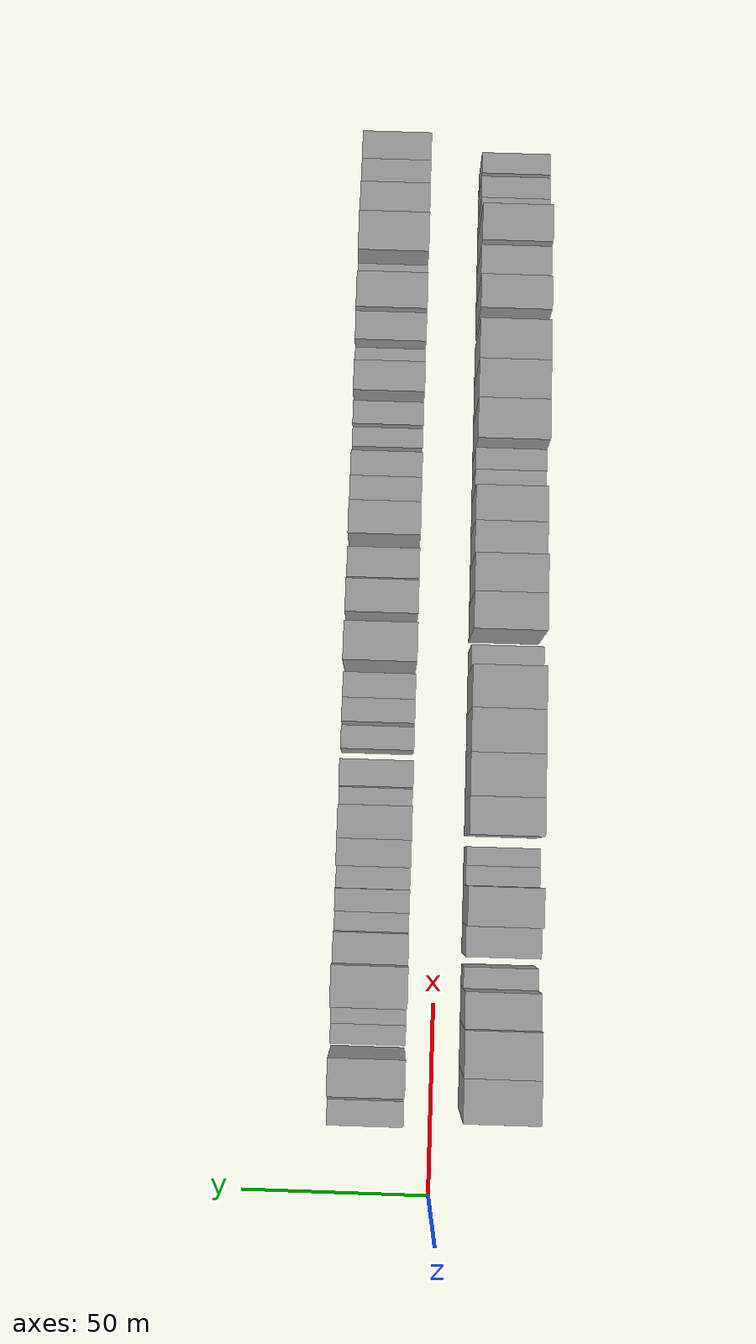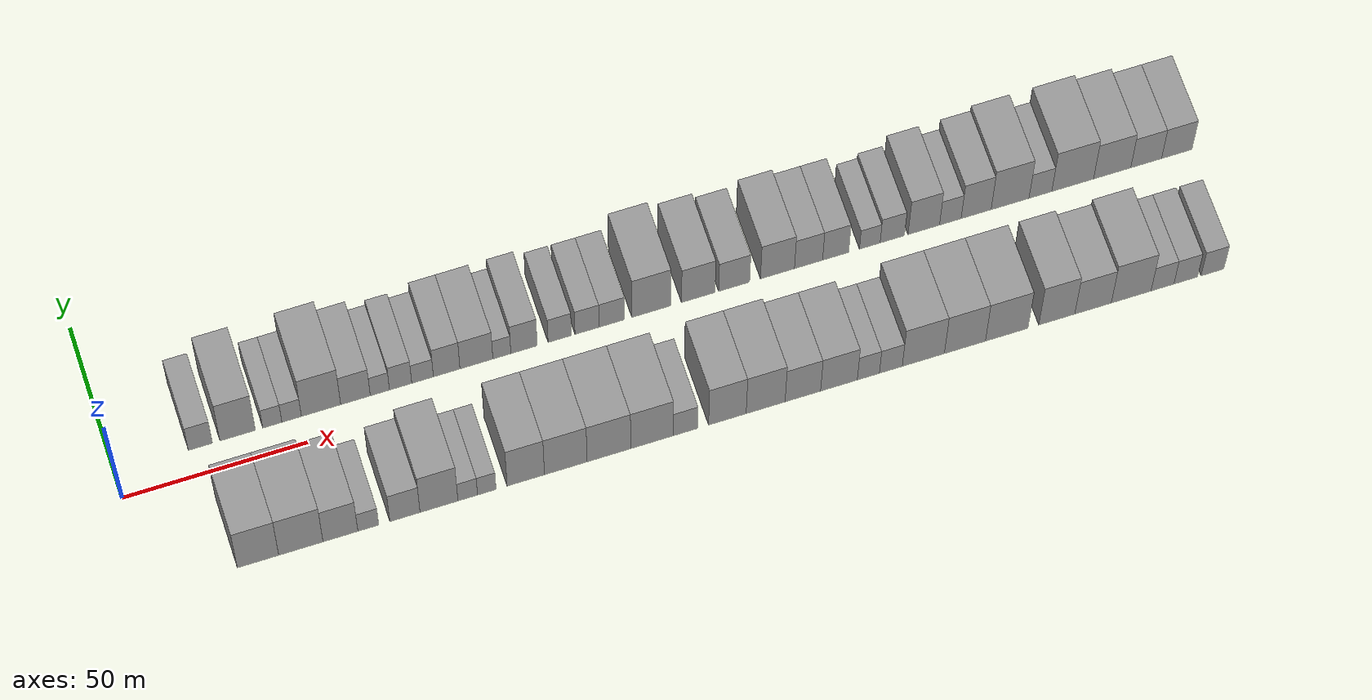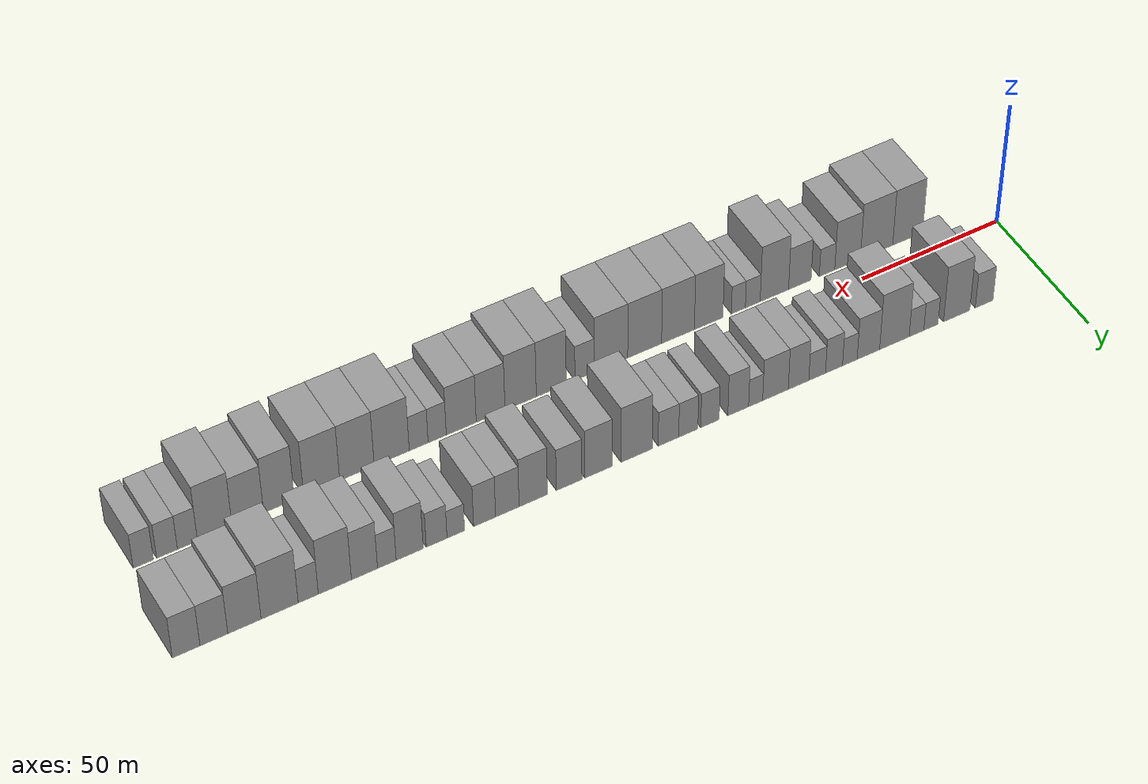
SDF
<sdf version="1.6">
 <world name="default">
  <scene>
   <sky><clouds><speed>12</speed></clouds></sky>
   <ambient>0.4 0.4 0.4 1</ambient>
   <background>0.7 0.7 0.7 1</background>
   <shadows>1</shadows>
  </scene>
  <gravity>0 0 -9.8066</gravity>
  <magnetic_field>6e-06 2.3e-05 -4.2e-05</magnetic_field>
  <physics default="0" name="default_physics" type="ode">
   <ode>
    <solver>
     <type>quick</type>
     <iters>10</iters>
     <sor>1.0</sor>
     <use_dynamic_moi_rescaling>0</use_dynamic_moi_rescaling>
    </solver>
    <constraints>
     <cfm>0</cfm>
     <erp>0.2</erp>
     <contact_max_correcting_vel>100</contact_max_correcting_vel>
     <contact_surface_layer>0.001</contact_surface_layer>
    </constraints>
   </ode>
   <max_step_size>0.004</max_step_size>
   <real_time_factor>1</real_time_factor>
   <real_time_update_rate>250</real_time_update_rate>
  </physics>
  <light name="sun" type="directional">
   <pose>0 0 10 0 0 0</pose>
   <diffuse>0.8 0.8 0.8 1</diffuse>
   <specular>0.2 0.2 0.2 1</specular>
   <attenuation>
    <range>1000</range>
    <constant>0.9</constant>
    <linear>0.01</linear>
    <quadratic>0.001</quadratic>
   </attenuation>
   <direction>-0.5 0.1 -0.9</direction>
  </light>
  <model name="building_1">
   <static>1</static>
   <pose>23.2598 17.5000 0 0.000000 0.000000 1.570796</pose>
   <link name="link">
    <pose>0 0 7.50 0 0 0</pose>
    <collision name="collision"><geometry><box><size>20.0000 6.5196 15.0000</size></box></geometry></collision>
    <visual name="visual">
     <cast_shadows>0</cast_shadows>
     <geometry><box><size>20.0000 6.5196 15.0000</size></box></geometry>
     <material>
      <script>
       <uri>model://grey_wall/materials/scripts</uri>
       <uri>model://grey_wall/materials/textures</uri>
       <name>vrc/grey_wall</name>
      </script>
     </material>
    </visual>
   </link>
  </model>
  <model name="building_2">
   <static>1</static>
   <pose>33.3196 17.5000 0 0.000000 0.000000 1.570796</pose>
   <link name="link">
    <pose>0 0 12.00 0 0 0</pose>
    <collision name="collision"><geometry><box><size>20.0000 9.6000 24.0000</size></box></geometry></collision>
    <visual name="visual">
     <cast_shadows>0</cast_shadows>
     <geometry><box><size>20.0000 9.6000 24.0000</size></box></geometry>
     <material>
      <script>
       <uri>model://grey_wall/materials/scripts</uri>
       <uri>model://grey_wall/materials/textures</uri>
       <name>vrc/grey_wall</name>
      </script>
     </material>
    </visual>
   </link>
  </model>
  <model name="building_3">
   <static>1</static>
   <pose>42.7058 17.5000 0 0.000000 0.000000 1.570796</pose>
   <link name="link">
    <pose>0 0 6.00 0 0 0</pose>
    <collision name="collision"><geometry><box><size>20.0000 5.1722 12.0000</size></box></geometry></collision>
    <visual name="visual">
     <cast_shadows>0</cast_shadows>
     <geometry><box><size>20.0000 5.1722 12.0000</size></box></geometry>
     <material>
      <script>
       <uri>model://grey_wall/materials/scripts</uri>
       <uri>model://grey_wall/materials/textures</uri>
       <name>vrc/grey_wall</name>
      </script>
     </material>
    </visual>
   </link>
  </model>
  <model name="building_4">
   <static>1</static>
   <pose>47.9441 17.5000 0 0.000000 0.000000 1.570796</pose>
   <link name="link">
    <pose>0 0 6.00 0 0 0</pose>
    <collision name="collision"><geometry><box><size>20.0000 5.3044 12.0000</size></box></geometry></collision>
    <visual name="visual">
     <cast_shadows>0</cast_shadows>
     <geometry><box><size>20.0000 5.3044 12.0000</size></box></geometry>
     <material>
      <script>
       <uri>model://grey_wall/materials/scripts</uri>
       <uri>model://grey_wall/materials/textures</uri>
       <name>vrc/grey_wall</name>
      </script>
     </material>
    </visual>
   </link>
  </model>
  <model name="building_5">
   <static>1</static>
   <pose>55.9198 17.5000 0 0.000000 0.000000 1.570796</pose>
   <link name="link">
    <pose>0 0 12.00 0 0 0</pose>
    <collision name="collision"><geometry><box><size>20.0000 10.6470 24.0000</size></box></geometry></collision>
    <visual name="visual">
     <cast_shadows>0</cast_shadows>
     <geometry><box><size>20.0000 10.6470 24.0000</size></box></geometry>
     <material>
      <script>
       <uri>model://grey_wall/materials/scripts</uri>
       <uri>model://grey_wall/materials/textures</uri>
       <name>vrc/grey_wall</name>
      </script>
     </material>
    </visual>
   </link>
  </model>
  <model name="building_6">
   <static>1</static>
   <pose>65.2758 17.5000 0 0.000000 0.000000 1.570796</pose>
   <link name="link">
    <pose>0 0 9.00 0 0 0</pose>
    <collision name="collision"><geometry><box><size>20.0000 8.0650 18.0000</size></box></geometry></collision>
    <visual name="visual">
     <cast_shadows>0</cast_shadows>
     <geometry><box><size>20.0000 8.0650 18.0000</size></box></geometry>
     <material>
      <script>
       <uri>model://grey_wall/materials/scripts</uri>
       <uri>model://grey_wall/materials/textures</uri>
       <name>vrc/grey_wall</name>
      </script>
     </material>
    </visual>
   </link>
  </model>
  <model name="building_7">
   <static>1</static>
   <pose>71.9156 17.5000 0 0.000000 0.000000 1.570796</pose>
   <link name="link">
    <pose>0 0 6.00 0 0 0</pose>
    <collision name="collision"><geometry><box><size>20.0000 5.2147 12.0000</size></box></geometry></collision>
    <visual name="visual">
     <cast_shadows>0</cast_shadows>
     <geometry><box><size>20.0000 5.2147 12.0000</size></box></geometry>
     <material>
      <script>
       <uri>model://grey_wall/materials/scripts</uri>
       <uri>model://grey_wall/materials/textures</uri>
       <name>vrc/grey_wall</name>
      </script>
     </material>
    </visual>
   </link>
  </model>
  <model name="building_8">
   <static>1</static>
   <pose>77.5561 17.5000 0 0.000000 0.000000 1.570796</pose>
   <link name="link">
    <pose>0 0 7.50 0 0 0</pose>
    <collision name="collision"><geometry><box><size>20.0000 6.0664 15.0000</size></box></geometry></collision>
    <visual name="visual">
     <cast_shadows>0</cast_shadows>
     <geometry><box><size>20.0000 6.0664 15.0000</size></box></geometry>
     <material>
      <script>
       <uri>model://grey_wall/materials/scripts</uri>
       <uri>model://grey_wall/materials/textures</uri>
       <name>vrc/grey_wall</name>
      </script>
     </material>
    </visual>
   </link>
  </model>
  <model name="building_9">
   <static>1</static>
   <pose>83.5426 17.5000 0 0.000000 0.000000 1.570796</pose>
   <link name="link">
    <pose>0 0 6.00 0 0 0</pose>
    <collision name="collision"><geometry><box><size>20.0000 5.9064 12.0000</size></box></geometry></collision>
    <visual name="visual">
     <cast_shadows>0</cast_shadows>
     <geometry><box><size>20.0000 5.9064 12.0000</size></box></geometry>
     <material>
      <script>
       <uri>model://grey_wall/materials/scripts</uri>
       <uri>model://grey_wall/materials/textures</uri>
       <name>vrc/grey_wall</name>
      </script>
     </material>
    </visual>
   </link>
  </model>
  <model name="building_10">
   <static>1</static>
   <pose>90.1223 17.5000 0 0.000000 0.000000 1.570796</pose>
   <link name="link">
    <pose>0 0 9.00 0 0 0</pose>
    <collision name="collision"><geometry><box><size>20.0000 7.2530 18.0000</size></box></geometry></collision>
    <visual name="visual">
     <cast_shadows>0</cast_shadows>
     <geometry><box><size>20.0000 7.2530 18.0000</size></box></geometry>
     <material>
      <script>
       <uri>model://grey_wall/materials/scripts</uri>
       <uri>model://grey_wall/materials/textures</uri>
       <name>vrc/grey_wall</name>
      </script>
     </material>
    </visual>
   </link>
  </model>
  <model name="building_11">
   <static>1</static>
   <pose>98.2438 17.5000 0 0.000000 0.000000 1.570796</pose>
   <link name="link">
    <pose>0 0 9.00 0 0 0</pose>
    <collision name="collision"><geometry><box><size>20.0000 8.9901 18.0000</size></box></geometry></collision>
    <visual name="visual">
     <cast_shadows>0</cast_shadows>
     <geometry><box><size>20.0000 8.9901 18.0000</size></box></geometry>
     <material>
      <script>
       <uri>model://grey_wall/materials/scripts</uri>
       <uri>model://grey_wall/materials/textures</uri>
       <name>vrc/grey_wall</name>
      </script>
     </material>
    </visual>
   </link>
  </model>
  <model name="building_12">
   <static>1</static>
   <pose>105.2017 17.5000 0 0.000000 0.000000 1.570796</pose>
   <link name="link">
    <pose>0 0 6.00 0 0 0</pose>
    <collision name="collision"><geometry><box><size>20.0000 4.9256 12.0000</size></box></geometry></collision>
    <visual name="visual">
     <cast_shadows>0</cast_shadows>
     <geometry><box><size>20.0000 4.9256 12.0000</size></box></geometry>
     <material>
      <script>
       <uri>model://grey_wall/materials/scripts</uri>
       <uri>model://grey_wall/materials/textures</uri>
       <name>vrc/grey_wall</name>
      </script>
     </material>
    </visual>
   </link>
  </model>
  <model name="building_13">
   <static>1</static>
   <pose>111.2746 17.5000 0 0.000000 0.000000 1.570796</pose>
   <link name="link">
    <pose>0 0 9.00 0 0 0</pose>
    <collision name="collision"><geometry><box><size>20.0000 7.2204 18.0000</size></box></geometry></collision>
    <visual name="visual">
     <cast_shadows>0</cast_shadows>
     <geometry><box><size>20.0000 7.2204 18.0000</size></box></geometry>
     <material>
      <script>
       <uri>model://grey_wall/materials/scripts</uri>
       <uri>model://grey_wall/materials/textures</uri>
       <name>vrc/grey_wall</name>
      </script>
     </material>
    </visual>
   </link>
  </model>
  <model name="building_14">
   <static>1</static>
   <pose>121.0818 17.5000 0 0.000000 0.000000 1.570796</pose>
   <link name="link">
    <pose>0 0 7.50 0 0 0</pose>
    <collision name="collision"><geometry><box><size>20.0000 6.3939 15.0000</size></box></geometry></collision>
    <visual name="visual">
     <cast_shadows>0</cast_shadows>
     <geometry><box><size>20.0000 6.3939 15.0000</size></box></geometry>
     <material>
      <script>
       <uri>model://grey_wall/materials/scripts</uri>
       <uri>model://grey_wall/materials/textures</uri>
       <name>vrc/grey_wall</name>
      </script>
     </material>
    </visual>
   </link>
  </model>
  <model name="building_15">
   <static>1</static>
   <pose>128.5767 17.5000 0 0.000000 0.000000 1.570796</pose>
   <link name="link">
    <pose>0 0 7.50 0 0 0</pose>
    <collision name="collision"><geometry><box><size>20.0000 6.5960 15.0000</size></box></geometry></collision>
    <visual name="visual">
     <cast_shadows>0</cast_shadows>
     <geometry><box><size>20.0000 6.5960 15.0000</size></box></geometry>
     <material>
      <script>
       <uri>model://grey_wall/materials/scripts</uri>
       <uri>model://grey_wall/materials/textures</uri>
       <name>vrc/grey_wall</name>
      </script>
     </material>
    </visual>
   </link>
  </model>
  <model name="building_16">
   <static>1</static>
   <pose>135.3907 17.5000 0 0.000000 0.000000 1.570796</pose>
   <link name="link">
    <pose>0 0 7.50 0 0 0</pose>
    <collision name="collision"><geometry><box><size>20.0000 7.0320 15.0000</size></box></geometry></collision>
    <visual name="visual">
     <cast_shadows>0</cast_shadows>
     <geometry><box><size>20.0000 7.0320 15.0000</size></box></geometry>
     <material>
      <script>
       <uri>model://grey_wall/materials/scripts</uri>
       <uri>model://grey_wall/materials/textures</uri>
       <name>vrc/grey_wall</name>
      </script>
     </material>
    </visual>
   </link>
  </model>
  <model name="building_17">
   <static>1</static>
   <pose>146.2509 17.5000 0 0.000000 0.000000 1.570796</pose>
   <link name="link">
    <pose>0 0 12.00 0 0 0</pose>
    <collision name="collision"><geometry><box><size>20.0000 10.6883 24.0000</size></box></geometry></collision>
    <visual name="visual">
     <cast_shadows>0</cast_shadows>
     <geometry><box><size>20.0000 10.6883 24.0000</size></box></geometry>
     <material>
      <script>
       <uri>model://grey_wall/materials/scripts</uri>
       <uri>model://grey_wall/materials/textures</uri>
       <name>vrc/grey_wall</name>
      </script>
     </material>
    </visual>
   </link>
  </model>
  <model name="building_18">
   <static>1</static>
   <pose>159.2316 17.5000 0 0.000000 0.000000 1.570796</pose>
   <link name="link">
    <pose>0 0 10.50 0 0 0</pose>
    <collision name="collision"><geometry><box><size>20.0000 9.2732 21.0000</size></box></geometry></collision>
    <visual name="visual">
     <cast_shadows>0</cast_shadows>
     <geometry><box><size>20.0000 9.2732 21.0000</size></box></geometry>
     <material>
      <script>
       <uri>model://grey_wall/materials/scripts</uri>
       <uri>model://grey_wall/materials/textures</uri>
       <name>vrc/grey_wall</name>
      </script>
     </material>
    </visual>
   </link>
  </model>
  <model name="building_19">
   <static>1</static>
   <pose>169.1585 17.5000 0 0.000000 0.000000 1.570796</pose>
   <link name="link">
    <pose>0 0 9.00 0 0 0</pose>
    <collision name="collision"><geometry><box><size>20.0000 8.5805 18.0000</size></box></geometry></collision>
    <visual name="visual">
     <cast_shadows>0</cast_shadows>
     <geometry><box><size>20.0000 8.5805 18.0000</size></box></geometry>
     <material>
      <script>
       <uri>model://grey_wall/materials/scripts</uri>
       <uri>model://grey_wall/materials/textures</uri>
       <name>vrc/grey_wall</name>
      </script>
     </material>
    </visual>
   </link>
  </model>
  <model name="building_20">
   <static>1</static>
   <pose>181.1733 17.5000 0 0.000000 0.000000 1.570796</pose>
   <link name="link">
    <pose>0 0 10.50 0 0 0</pose>
    <collision name="collision"><geometry><box><size>20.0000 9.4491 21.0000</size></box></geometry></collision>
    <visual name="visual">
     <cast_shadows>0</cast_shadows>
     <geometry><box><size>20.0000 9.4491 21.0000</size></box></geometry>
     <material>
      <script>
       <uri>model://grey_wall/materials/scripts</uri>
       <uri>model://grey_wall/materials/textures</uri>
       <name>vrc/grey_wall</name>
      </script>
     </material>
    </visual>
   </link>
  </model>
  <model name="building_21">
   <static>1</static>
   <pose>189.8039 17.5000 0 0.000000 0.000000 1.570796</pose>
   <link name="link">
    <pose>0 0 9.00 0 0 0</pose>
    <collision name="collision"><geometry><box><size>20.0000 7.8122 18.0000</size></box></geometry></collision>
    <visual name="visual">
     <cast_shadows>0</cast_shadows>
     <geometry><box><size>20.0000 7.8122 18.0000</size></box></geometry>
     <material>
      <script>
       <uri>model://grey_wall/materials/scripts</uri>
       <uri>model://grey_wall/materials/textures</uri>
       <name>vrc/grey_wall</name>
      </script>
     </material>
    </visual>
   </link>
  </model>
  <model name="building_22">
   <static>1</static>
   <pose>197.3425 17.5000 0 0.000000 0.000000 1.570796</pose>
   <link name="link">
    <pose>0 0 9.00 0 0 0</pose>
    <collision name="collision"><geometry><box><size>20.0000 7.2649 18.0000</size></box></geometry></collision>
    <visual name="visual">
     <cast_shadows>0</cast_shadows>
     <geometry><box><size>20.0000 7.2649 18.0000</size></box></geometry>
     <material>
      <script>
       <uri>model://grey_wall/materials/scripts</uri>
       <uri>model://grey_wall/materials/textures</uri>
       <name>vrc/grey_wall</name>
      </script>
     </material>
    </visual>
   </link>
  </model>
  <model name="building_23">
   <static>1</static>
   <pose>206.8565 17.5000 0 0.000000 0.000000 1.570796</pose>
   <link name="link">
    <pose>0 0 6.00 0 0 0</pose>
    <collision name="collision"><geometry><box><size>20.0000 5.7632 12.0000</size></box></geometry></collision>
    <visual name="visual">
     <cast_shadows>0</cast_shadows>
     <geometry><box><size>20.0000 5.7632 12.0000</size></box></geometry>
     <material>
      <script>
       <uri>model://grey_wall/materials/scripts</uri>
       <uri>model://grey_wall/materials/textures</uri>
       <name>vrc/grey_wall</name>
      </script>
     </material>
    </visual>
   </link>
  </model>
  <model name="building_24">
   <static>1</static>
   <pose>213.1314 17.5000 0 0.000000 0.000000 1.570796</pose>
   <link name="link">
    <pose>0 0 7.50 0 0 0</pose>
    <collision name="collision"><geometry><box><size>20.0000 6.7866 15.0000</size></box></geometry></collision>
    <visual name="visual">
     <cast_shadows>0</cast_shadows>
     <geometry><box><size>20.0000 6.7866 15.0000</size></box></geometry>
     <material>
      <script>
       <uri>model://grey_wall/materials/scripts</uri>
       <uri>model://grey_wall/materials/textures</uri>
       <name>vrc/grey_wall</name>
      </script>
     </material>
    </visual>
   </link>
  </model>
  <model name="building_25">
   <static>1</static>
   <pose>221.9245 17.5000 0 0.000000 0.000000 1.570796</pose>
   <link name="link">
    <pose>0 0 10.50 0 0 0</pose>
    <collision name="collision"><geometry><box><size>20.0000 8.7995 21.0000</size></box></geometry></collision>
    <visual name="visual">
     <cast_shadows>0</cast_shadows>
     <geometry><box><size>20.0000 8.7995 21.0000</size></box></geometry>
     <material>
      <script>
       <uri>model://grey_wall/materials/scripts</uri>
       <uri>model://grey_wall/materials/textures</uri>
       <name>vrc/grey_wall</name>
      </script>
     </material>
    </visual>
   </link>
  </model>
  <model name="building_26">
   <static>1</static>
   <pose>229.3442 17.5000 0 0.000000 0.000000 1.570796</pose>
   <link name="link">
    <pose>0 0 7.50 0 0 0</pose>
    <collision name="collision"><geometry><box><size>20.0000 6.0399 15.0000</size></box></geometry></collision>
    <visual name="visual">
     <cast_shadows>0</cast_shadows>
     <geometry><box><size>20.0000 6.0399 15.0000</size></box></geometry>
     <material>
      <script>
       <uri>model://grey_wall/materials/scripts</uri>
       <uri>model://grey_wall/materials/textures</uri>
       <name>vrc/grey_wall</name>
      </script>
     </material>
    </visual>
   </link>
  </model>
  <model name="building_27">
   <static>1</static>
   <pose>236.5694 17.5000 0 0.000000 0.000000 1.570796</pose>
   <link name="link">
    <pose>0 0 10.50 0 0 0</pose>
    <collision name="collision"><geometry><box><size>20.0000 8.4105 21.0000</size></box></geometry></collision>
    <visual name="visual">
     <cast_shadows>0</cast_shadows>
     <geometry><box><size>20.0000 8.4105 21.0000</size></box></geometry>
     <material>
      <script>
       <uri>model://grey_wall/materials/scripts</uri>
       <uri>model://grey_wall/materials/textures</uri>
       <name>vrc/grey_wall</name>
      </script>
     </material>
    </visual>
   </link>
  </model>
  <model name="building_28">
   <static>1</static>
   <pose>246.0889 17.5000 0 0.000000 0.000000 1.570796</pose>
   <link name="link">
    <pose>0 0 12.00 0 0 0</pose>
    <collision name="collision"><geometry><box><size>20.0000 10.6284 24.0000</size></box></geometry></collision>
    <visual name="visual">
     <cast_shadows>0</cast_shadows>
     <geometry><box><size>20.0000 10.6284 24.0000</size></box></geometry>
     <material>
      <script>
       <uri>model://grey_wall/materials/scripts</uri>
       <uri>model://grey_wall/materials/textures</uri>
       <name>vrc/grey_wall</name>
      </script>
     </material>
    </visual>
   </link>
  </model>
  <model name="building_29">
   <static>1</static>
   <pose>254.6032 17.5000 0 0.000000 0.000000 1.570796</pose>
   <link name="link">
    <pose>0 0 7.50 0 0 0</pose>
    <collision name="collision"><geometry><box><size>20.0000 6.4003 15.0000</size></box></geometry></collision>
    <visual name="visual">
     <cast_shadows>0</cast_shadows>
     <geometry><box><size>20.0000 6.4003 15.0000</size></box></geometry>
     <material>
      <script>
       <uri>model://grey_wall/materials/scripts</uri>
       <uri>model://grey_wall/materials/textures</uri>
       <name>vrc/grey_wall</name>
      </script>
     </material>
    </visual>
   </link>
  </model>
  <model name="building_30">
   <static>1</static>
   <pose>263.6817 17.5000 0 0.000000 0.000000 1.570796</pose>
   <link name="link">
    <pose>0 0 12.00 0 0 0</pose>
    <collision name="collision"><geometry><box><size>20.0000 11.7566 24.0000</size></box></geometry></collision>
    <visual name="visual">
     <cast_shadows>0</cast_shadows>
     <geometry><box><size>20.0000 11.7566 24.0000</size></box></geometry>
     <material>
      <script>
       <uri>model://grey_wall/materials/scripts</uri>
       <uri>model://grey_wall/materials/textures</uri>
       <name>vrc/grey_wall</name>
      </script>
     </material>
    </visual>
   </link>
  </model>
  <model name="building_31">
   <static>1</static>
   <pose>274.8075 17.5000 0 0.000000 0.000000 1.570796</pose>
   <link name="link">
    <pose>0 0 10.50 0 0 0</pose>
    <collision name="collision"><geometry><box><size>20.0000 10.4951 21.0000</size></box></geometry></collision>
    <visual name="visual">
     <cast_shadows>0</cast_shadows>
     <geometry><box><size>20.0000 10.4951 21.0000</size></box></geometry>
     <material>
      <script>
       <uri>model://grey_wall/materials/scripts</uri>
       <uri>model://grey_wall/materials/textures</uri>
       <name>vrc/grey_wall</name>
      </script>
     </material>
    </visual>
   </link>
  </model>
  <model name="building_32">
   <static>1</static>
   <pose>284.4045 17.5000 0 0.000000 0.000000 1.570796</pose>
   <link name="link">
    <pose>0 0 9.00 0 0 0</pose>
    <collision name="collision"><geometry><box><size>20.0000 8.6988 18.0000</size></box></geometry></collision>
    <visual name="visual">
     <cast_shadows>0</cast_shadows>
     <geometry><box><size>20.0000 8.6988 18.0000</size></box></geometry>
     <material>
      <script>
       <uri>model://grey_wall/materials/scripts</uri>
       <uri>model://grey_wall/materials/textures</uri>
       <name>vrc/grey_wall</name>
      </script>
     </material>
    </visual>
   </link>
  </model>
  <model name="building_33">
   <static>1</static>
   <pose>293.0578 17.5000 0 0.000000 0.000000 1.570796</pose>
   <link name="link">
    <pose>0 0 9.00 0 0 0</pose>
    <collision name="collision"><geometry><box><size>20.0000 8.6078 18.0000</size></box></geometry></collision>
    <visual name="visual">
     <cast_shadows>0</cast_shadows>
     <geometry><box><size>20.0000 8.6078 18.0000</size></box></geometry>
     <material>
      <script>
       <uri>model://grey_wall/materials/scripts</uri>
       <uri>model://grey_wall/materials/textures</uri>
       <name>vrc/grey_wall</name>
      </script>
     </material>
    </visual>
   </link>
  </model>
  <model name="building_34">
   <static>1</static>
   <pose>28.5457 -17.5000 0 0.000000 0.000000 1.570796</pose>
   <link name="link">
    <pose>0 0 12.00 0 0 0</pose>
    <collision name="collision"><geometry><box><size>20.0000 11.0914 24.0000</size></box></geometry></collision>
    <visual name="visual">
     <cast_shadows>0</cast_shadows>
     <geometry><box><size>20.0000 11.0914 24.0000</size></box></geometry>
     <material>
      <script>
       <uri>model://grey_wall/materials/scripts</uri>
       <uri>model://grey_wall/materials/textures</uri>
       <name>vrc/grey_wall</name>
      </script>
     </material>
    </visual>
   </link>
  </model>
  <model name="building_35">
   <static>1</static>
   <pose>40.0376 -17.5000 0 0.000000 0.000000 1.570796</pose>
   <link name="link">
    <pose>0 0 12.00 0 0 0</pose>
    <collision name="collision"><geometry><box><size>20.0000 11.8923 24.0000</size></box></geometry></collision>
    <visual name="visual">
     <cast_shadows>0</cast_shadows>
     <geometry><box><size>20.0000 11.8923 24.0000</size></box></geometry>
     <material>
      <script>
       <uri>model://grey_wall/materials/scripts</uri>
       <uri>model://grey_wall/materials/textures</uri>
       <name>vrc/grey_wall</name>
      </script>
     </material>
    </visual>
   </link>
  </model>
  <model name="building_36">
   <static>1</static>
   <pose>50.6753 -17.5000 0 0.000000 0.000000 1.570796</pose>
   <link name="link">
    <pose>0 0 10.50 0 0 0</pose>
    <collision name="collision"><geometry><box><size>20.0000 9.3831 21.0000</size></box></geometry></collision>
    <visual name="visual">
     <cast_shadows>0</cast_shadows>
     <geometry><box><size>20.0000 9.3831 21.0000</size></box></geometry>
     <material>
      <script>
       <uri>model://grey_wall/materials/scripts</uri>
       <uri>model://grey_wall/materials/textures</uri>
       <name>vrc/grey_wall</name>
      </script>
     </material>
    </visual>
   </link>
  </model>
  <model name="building_37">
   <static>1</static>
   <pose>58.1698 -17.5000 0 0.000000 0.000000 1.570796</pose>
   <link name="link">
    <pose>0 0 6.00 0 0 0</pose>
    <collision name="collision"><geometry><box><size>20.0000 5.6060 12.0000</size></box></geometry></collision>
    <visual name="visual">
     <cast_shadows>0</cast_shadows>
     <geometry><box><size>20.0000 5.6060 12.0000</size></box></geometry>
     <material>
      <script>
       <uri>model://grey_wall/materials/scripts</uri>
       <uri>model://grey_wall/materials/textures</uri>
       <name>vrc/grey_wall</name>
      </script>
     </material>
    </visual>
   </link>
  </model>
  <model name="building_38">
   <static>1</static>
   <pose>68.0473 -17.5000 0 0.000000 0.000000 1.570796</pose>
   <link name="link">
    <pose>0 0 9.00 0 0 0</pose>
    <collision name="collision"><geometry><box><size>20.0000 8.1490 18.0000</size></box></geometry></collision>
    <visual name="visual">
     <cast_shadows>0</cast_shadows>
     <geometry><box><size>20.0000 8.1490 18.0000</size></box></geometry>
     <material>
      <script>
       <uri>model://grey_wall/materials/scripts</uri>
       <uri>model://grey_wall/materials/textures</uri>
       <name>vrc/grey_wall</name>
      </script>
     </material>
    </visual>
   </link>
  </model>
  <model name="building_39">
   <static>1</static>
   <pose>77.2337 -17.5000 0 0.000000 0.000000 1.570796</pose>
   <link name="link">
    <pose>0 0 12.00 0 0 0</pose>
    <collision name="collision"><geometry><box><size>20.0000 10.2238 24.0000</size></box></geometry></collision>
    <visual name="visual">
     <cast_shadows>0</cast_shadows>
     <geometry><box><size>20.0000 10.2238 24.0000</size></box></geometry>
     <material>
      <script>
       <uri>model://grey_wall/materials/scripts</uri>
       <uri>model://grey_wall/materials/textures</uri>
       <name>vrc/grey_wall</name>
      </script>
     </material>
    </visual>
   </link>
  </model>
  <model name="building_40">
   <static>1</static>
   <pose>84.9949 -17.5000 0 0.000000 0.000000 1.570796</pose>
   <link name="link">
    <pose>0 0 6.00 0 0 0</pose>
    <collision name="collision"><geometry><box><size>20.0000 5.2986 12.0000</size></box></geometry></collision>
    <visual name="visual">
     <cast_shadows>0</cast_shadows>
     <geometry><box><size>20.0000 5.2986 12.0000</size></box></geometry>
     <material>
      <script>
       <uri>model://grey_wall/materials/scripts</uri>
       <uri>model://grey_wall/materials/textures</uri>
       <name>vrc/grey_wall</name>
      </script>
     </material>
    </visual>
   </link>
  </model>
  <model name="building_41">
   <static>1</static>
   <pose>90.1527 -17.5000 0 0.000000 0.000000 1.570796</pose>
   <link name="link">
    <pose>0 0 6.00 0 0 0</pose>
    <collision name="collision"><geometry><box><size>20.0000 5.0172 12.0000</size></box></geometry></collision>
    <visual name="visual">
     <cast_shadows>0</cast_shadows>
     <geometry><box><size>20.0000 5.0172 12.0000</size></box></geometry>
     <material>
      <script>
       <uri>model://grey_wall/materials/scripts</uri>
       <uri>model://grey_wall/materials/textures</uri>
       <name>vrc/grey_wall</name>
      </script>
     </material>
    </visual>
   </link>
  </model>
  <model name="building_42">
   <static>1</static>
   <pose>100.7279 -17.5000 0 0.000000 0.000000 1.570796</pose>
   <link name="link">
    <pose>0 0 12.00 0 0 0</pose>
    <collision name="collision"><geometry><box><size>20.0000 10.1331 24.0000</size></box></geometry></collision>
    <visual name="visual">
     <cast_shadows>0</cast_shadows>
     <geometry><box><size>20.0000 10.1331 24.0000</size></box></geometry>
     <material>
      <script>
       <uri>model://grey_wall/materials/scripts</uri>
       <uri>model://grey_wall/materials/textures</uri>
       <name>vrc/grey_wall</name>
      </script>
     </material>
    </visual>
   </link>
  </model>
  <model name="building_43">
   <static>1</static>
   <pose>111.5780 -17.5000 0 0.000000 0.000000 1.570796</pose>
   <link name="link">
    <pose>0 0 12.00 0 0 0</pose>
    <collision name="collision"><geometry><box><size>20.0000 11.5671 24.0000</size></box></geometry></collision>
    <visual name="visual">
     <cast_shadows>0</cast_shadows>
     <geometry><box><size>20.0000 11.5671 24.0000</size></box></geometry>
     <material>
      <script>
       <uri>model://grey_wall/materials/scripts</uri>
       <uri>model://grey_wall/materials/textures</uri>
       <name>vrc/grey_wall</name>
      </script>
     </material>
    </visual>
   </link>
  </model>
  <model name="building_44">
   <static>1</static>
   <pose>123.2962 -17.5000 0 0.000000 0.000000 1.570796</pose>
   <link name="link">
    <pose>0 0 12.00 0 0 0</pose>
    <collision name="collision"><geometry><box><size>20.0000 11.8692 24.0000</size></box></geometry></collision>
    <visual name="visual">
     <cast_shadows>0</cast_shadows>
     <geometry><box><size>20.0000 11.8692 24.0000</size></box></geometry>
     <material>
      <script>
       <uri>model://grey_wall/materials/scripts</uri>
       <uri>model://grey_wall/materials/textures</uri>
       <name>vrc/grey_wall</name>
      </script>
     </material>
    </visual>
   </link>
  </model>
  <model name="building_45">
   <static>1</static>
   <pose>135.0423 -17.5000 0 0.000000 0.000000 1.570796</pose>
   <link name="link">
    <pose>0 0 12.00 0 0 0</pose>
    <collision name="collision"><geometry><box><size>20.0000 11.6230 24.0000</size></box></geometry></collision>
    <visual name="visual">
     <cast_shadows>0</cast_shadows>
     <geometry><box><size>20.0000 11.6230 24.0000</size></box></geometry>
     <material>
      <script>
       <uri>model://grey_wall/materials/scripts</uri>
       <uri>model://grey_wall/materials/textures</uri>
       <name>vrc/grey_wall</name>
      </script>
     </material>
    </visual>
   </link>
  </model>
  <model name="building_46">
   <static>1</static>
   <pose>144.1902 -17.5000 0 0.000000 0.000000 1.570796</pose>
   <link name="link">
    <pose>0 0 7.50 0 0 0</pose>
    <collision name="collision"><geometry><box><size>20.0000 6.6728 15.0000</size></box></geometry></collision>
    <visual name="visual">
     <cast_shadows>0</cast_shadows>
     <geometry><box><size>20.0000 6.6728 15.0000</size></box></geometry>
     <material>
      <script>
       <uri>model://grey_wall/materials/scripts</uri>
       <uri>model://grey_wall/materials/textures</uri>
       <name>vrc/grey_wall</name>
      </script>
     </material>
    </visual>
   </link>
  </model>
  <model name="building_47">
   <static>1</static>
   <pose>155.6745 -17.5000 0 0.000000 0.000000 1.570796</pose>
   <link name="link">
    <pose>0 0 12.00 0 0 0</pose>
    <collision name="collision"><geometry><box><size>20.0000 10.2958 24.0000</size></box></geometry></collision>
    <visual name="visual">
     <cast_shadows>0</cast_shadows>
     <geometry><box><size>20.0000 10.2958 24.0000</size></box></geometry>
     <material>
      <script>
       <uri>model://grey_wall/materials/scripts</uri>
       <uri>model://grey_wall/materials/textures</uri>
       <name>vrc/grey_wall</name>
      </script>
     </material>
    </visual>
   </link>
  </model>
  <model name="building_48">
   <static>1</static>
   <pose>166.1675 -17.5000 0 0.000000 0.000000 1.570796</pose>
   <link name="link">
    <pose>0 0 12.00 0 0 0</pose>
    <collision name="collision"><geometry><box><size>20.0000 10.6901 24.0000</size></box></geometry></collision>
    <visual name="visual">
     <cast_shadows>0</cast_shadows>
     <geometry><box><size>20.0000 10.6901 24.0000</size></box></geometry>
     <material>
      <script>
       <uri>model://grey_wall/materials/scripts</uri>
       <uri>model://grey_wall/materials/textures</uri>
       <name>vrc/grey_wall</name>
      </script>
     </material>
    </visual>
   </link>
  </model>
  <model name="building_49">
   <static>1</static>
   <pose>176.3931 -17.5000 0 0.000000 0.000000 1.570796</pose>
   <link name="link">
    <pose>0 0 10.50 0 0 0</pose>
    <collision name="collision"><geometry><box><size>20.0000 9.7612 21.0000</size></box></geometry></collision>
    <visual name="visual">
     <cast_shadows>0</cast_shadows>
     <geometry><box><size>20.0000 9.7612 21.0000</size></box></geometry>
     <material>
      <script>
       <uri>model://grey_wall/materials/scripts</uri>
       <uri>model://grey_wall/materials/textures</uri>
       <name>vrc/grey_wall</name>
      </script>
     </material>
    </visual>
   </link>
  </model>
  <model name="building_50">
   <static>1</static>
   <pose>186.3276 -17.5000 0 0.000000 0.000000 1.570796</pose>
   <link name="link">
    <pose>0 0 10.50 0 0 0</pose>
    <collision name="collision"><geometry><box><size>20.0000 10.1078 21.0000</size></box></geometry></collision>
    <visual name="visual">
     <cast_shadows>0</cast_shadows>
     <geometry><box><size>20.0000 10.1078 21.0000</size></box></geometry>
     <material>
      <script>
       <uri>model://grey_wall/materials/scripts</uri>
       <uri>model://grey_wall/materials/textures</uri>
       <name>vrc/grey_wall</name>
      </script>
     </material>
    </visual>
   </link>
  </model>
  <model name="building_51">
   <static>1</static>
   <pose>194.4283 -17.5000 0 0.000000 0.000000 1.570796</pose>
   <link name="link">
    <pose>0 0 7.50 0 0 0</pose>
    <collision name="collision"><geometry><box><size>20.0000 6.0935 15.0000</size></box></geometry></collision>
    <visual name="visual">
     <cast_shadows>0</cast_shadows>
     <geometry><box><size>20.0000 6.0935 15.0000</size></box></geometry>
     <material>
      <script>
       <uri>model://grey_wall/materials/scripts</uri>
       <uri>model://grey_wall/materials/textures</uri>
       <name>vrc/grey_wall</name>
      </script>
     </material>
    </visual>
   </link>
  </model>
  <model name="building_52">
   <static>1</static>
   <pose>200.6329 -17.5000 0 0.000000 0.000000 1.570796</pose>
   <link name="link">
    <pose>0 0 7.50 0 0 0</pose>
    <collision name="collision"><geometry><box><size>20.0000 6.3158 15.0000</size></box></geometry></collision>
    <visual name="visual">
     <cast_shadows>0</cast_shadows>
     <geometry><box><size>20.0000 6.3158 15.0000</size></box></geometry>
     <material>
      <script>
       <uri>model://grey_wall/materials/scripts</uri>
       <uri>model://grey_wall/materials/textures</uri>
       <name>vrc/grey_wall</name>
      </script>
     </material>
    </visual>
   </link>
  </model>
  <model name="building_53">
   <static>1</static>
   <pose>209.6123 -17.5000 0 0.000000 0.000000 1.570796</pose>
   <link name="link">
    <pose>0 0 12.00 0 0 0</pose>
    <collision name="collision"><geometry><box><size>20.0000 11.6429 24.0000</size></box></geometry></collision>
    <visual name="visual">
     <cast_shadows>0</cast_shadows>
     <geometry><box><size>20.0000 11.6429 24.0000</size></box></geometry>
     <material>
      <script>
       <uri>model://grey_wall/materials/scripts</uri>
       <uri>model://grey_wall/materials/textures</uri>
       <name>vrc/grey_wall</name>
      </script>
     </material>
    </visual>
   </link>
  </model>
  <model name="building_54">
   <static>1</static>
   <pose>221.1209 -17.5000 0 0.000000 0.000000 1.570796</pose>
   <link name="link">
    <pose>0 0 12.00 0 0 0</pose>
    <collision name="collision"><geometry><box><size>20.0000 11.3744 24.0000</size></box></geometry></collision>
    <visual name="visual">
     <cast_shadows>0</cast_shadows>
     <geometry><box><size>20.0000 11.3744 24.0000</size></box></geometry>
     <material>
      <script>
       <uri>model://grey_wall/materials/scripts</uri>
       <uri>model://grey_wall/materials/textures</uri>
       <name>vrc/grey_wall</name>
      </script>
     </material>
    </visual>
   </link>
  </model>
  <model name="building_55">
   <static>1</static>
   <pose>232.7196 -17.5000 0 0.000000 0.000000 1.570796</pose>
   <link name="link">
    <pose>0 0 12.00 0 0 0</pose>
    <collision name="collision"><geometry><box><size>20.0000 11.8230 24.0000</size></box></geometry></collision>
    <visual name="visual">
     <cast_shadows>0</cast_shadows>
     <geometry><box><size>20.0000 11.8230 24.0000</size></box></geometry>
     <material>
      <script>
       <uri>model://grey_wall/materials/scripts</uri>
       <uri>model://grey_wall/materials/textures</uri>
       <name>vrc/grey_wall</name>
      </script>
     </material>
    </visual>
   </link>
  </model>
  <model name="building_56">
   <static>1</static>
   <pose>246.6430 -17.5000 0 0.000000 0.000000 1.570796</pose>
   <link name="link">
    <pose>0 0 12.00 0 0 0</pose>
    <collision name="collision"><geometry><box><size>20.0000 10.0236 24.0000</size></box></geometry></collision>
    <visual name="visual">
     <cast_shadows>0</cast_shadows>
     <geometry><box><size>20.0000 10.0236 24.0000</size></box></geometry>
     <material>
      <script>
       <uri>model://grey_wall/materials/scripts</uri>
       <uri>model://grey_wall/materials/textures</uri>
       <name>vrc/grey_wall</name>
      </script>
     </material>
    </visual>
   </link>
  </model>
  <model name="building_57">
   <static>1</static>
   <pose>256.7400 -17.5000 0 0.000000 0.000000 1.570796</pose>
   <link name="link">
    <pose>0 0 10.50 0 0 0</pose>
    <collision name="collision"><geometry><box><size>20.0000 10.1704 21.0000</size></box></geometry></collision>
    <visual name="visual">
     <cast_shadows>0</cast_shadows>
     <geometry><box><size>20.0000 10.1704 21.0000</size></box></geometry>
     <material>
      <script>
       <uri>model://grey_wall/materials/scripts</uri>
       <uri>model://grey_wall/materials/textures</uri>
       <name>vrc/grey_wall</name>
      </script>
     </material>
    </visual>
   </link>
  </model>
  <model name="building_58">
   <static>1</static>
   <pose>267.3778 -17.5000 0 0.000000 0.000000 1.570796</pose>
   <link name="link">
    <pose>0 0 12.00 0 0 0</pose>
    <collision name="collision"><geometry><box><size>20.0000 11.1052 24.0000</size></box></geometry></collision>
    <visual name="visual">
     <cast_shadows>0</cast_shadows>
     <geometry><box><size>20.0000 11.1052 24.0000</size></box></geometry>
     <material>
      <script>
       <uri>model://grey_wall/materials/scripts</uri>
       <uri>model://grey_wall/materials/textures</uri>
       <name>vrc/grey_wall</name>
      </script>
     </material>
    </visual>
   </link>
  </model>
  <model name="building_59">
   <static>1</static>
   <pose>276.1302 -17.5000 0 0.000000 0.000000 1.570796</pose>
   <link name="link">
    <pose>0 0 7.50 0 0 0</pose>
    <collision name="collision"><geometry><box><size>20.0000 6.3997 15.0000</size></box></geometry></collision>
    <visual name="visual">
     <cast_shadows>0</cast_shadows>
     <geometry><box><size>20.0000 6.3997 15.0000</size></box></geometry>
     <material>
      <script>
       <uri>model://grey_wall/materials/scripts</uri>
       <uri>model://grey_wall/materials/textures</uri>
       <name>vrc/grey_wall</name>
      </script>
     </material>
    </visual>
   </link>
  </model>
  <model name="building_60">
   <static>1</static>
   <pose>282.6295 -17.5000 0 0.000000 0.000000 1.570796</pose>
   <link name="link">
    <pose>0 0 7.50 0 0 0</pose>
    <collision name="collision"><geometry><box><size>20.0000 6.5988 15.0000</size></box></geometry></collision>
    <visual name="visual">
     <cast_shadows>0</cast_shadows>
     <geometry><box><size>20.0000 6.5988 15.0000</size></box></geometry>
     <material>
      <script>
       <uri>model://grey_wall/materials/scripts</uri>
       <uri>model://grey_wall/materials/textures</uri>
       <name>vrc/grey_wall</name>
      </script>
     </material>
    </visual>
   </link>
  </model>
  <model name="building_61">
   <static>1</static>
   <pose>290.1322 -17.5000 0 0.000000 0.000000 1.570796</pose>
   <link name="link">
    <pose>0 0 7.50 0 0 0</pose>
    <collision name="collision"><geometry><box><size>20.0000 6.4065 15.0000</size></box></geometry></collision>
    <visual name="visual">
     <cast_shadows>0</cast_shadows>
     <geometry><box><size>20.0000 6.4065 15.0000</size></box></geometry>
     <material>
      <script>
       <uri>model://grey_wall/materials/scripts</uri>
       <uri>model://grey_wall/materials/textures</uri>
       <name>vrc/grey_wall</name>
      </script>
     </material>
    </visual>
   </link>
  </model>
 </world>
</sdf>
